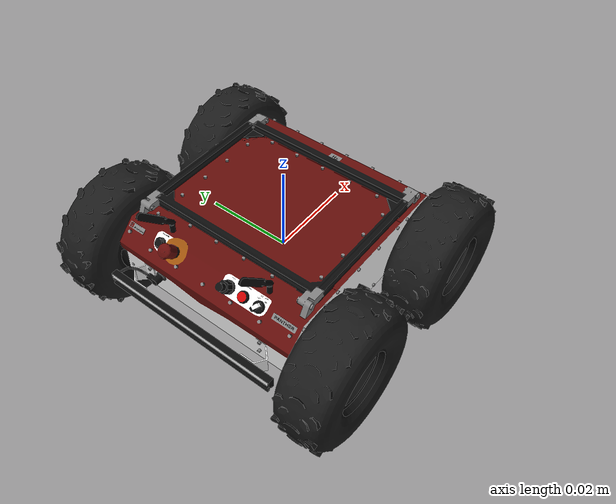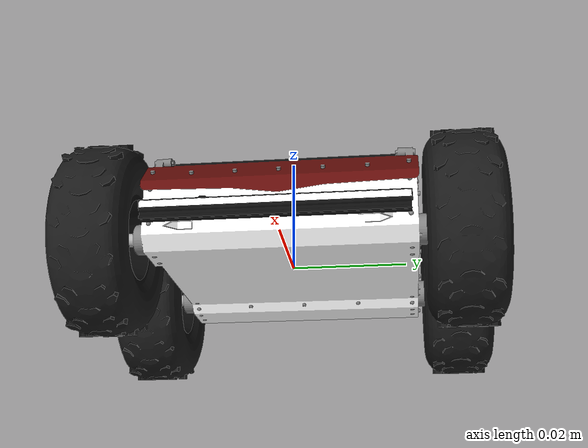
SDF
<?xml version="1.0" ?>
<sdf version="1.6">
  <model name="panther_toy">
    <static>false</static>
    <link name="link">
      <inertial>
        <mass>0.1</mass>
        <inertia>
          <ixx>0.0001</ixx>
          <iyy>0.0001</iyy>
          <izz>0.0001</izz>
          <ixy>0</ixy>
          <ixz>0</ixz>
          <iyz>0</iyz>
        </inertia>
      </inertial>
      <collision name="collision">
        <geometry>
          <box>
            <size>0.0706667 0.0674167 0.0296667</size>
          </box>
        </geometry>
        <surface>
          <friction>
            <ode>
              <mu>10.0</mu>
              <mu2>10.0</mu2>
            </ode>
          </friction>
        </surface>
      </collision>
      <visual name="visual">
        <pose>0 0 0 0 0 0</pose>
        <geometry>
          <mesh>
            <uri>model://panther_toy/meshes/panther_toy.dae</uri>
          </mesh>
        </geometry>
      </visual>
      <kinematic>0</kinematic>
    </link>
  </model>
</sdf>
